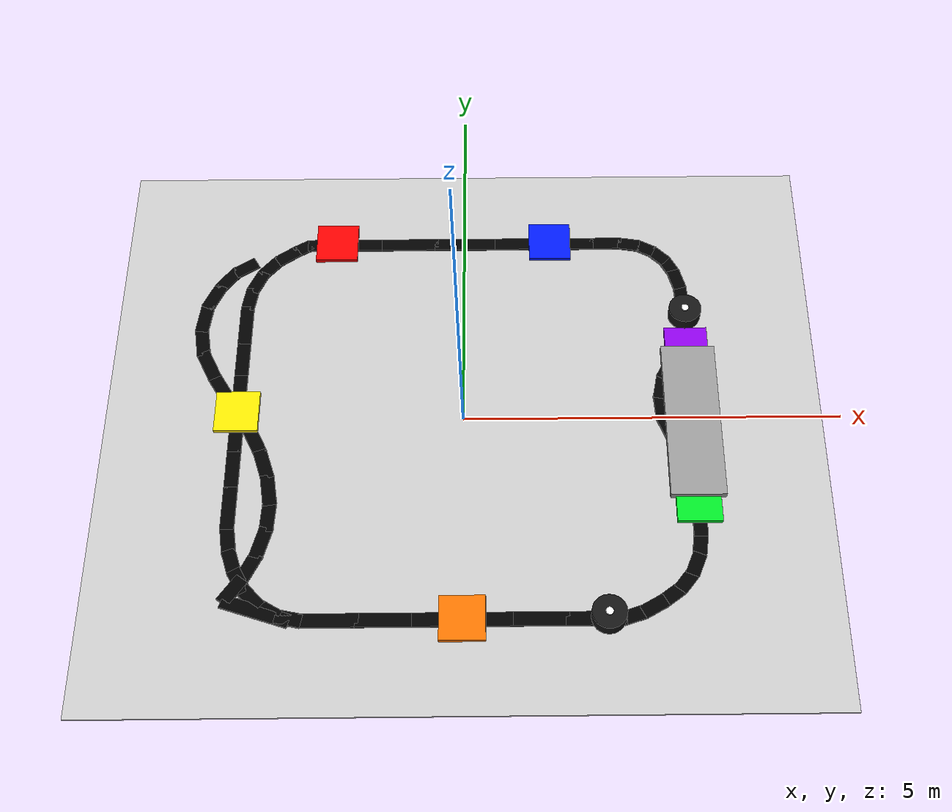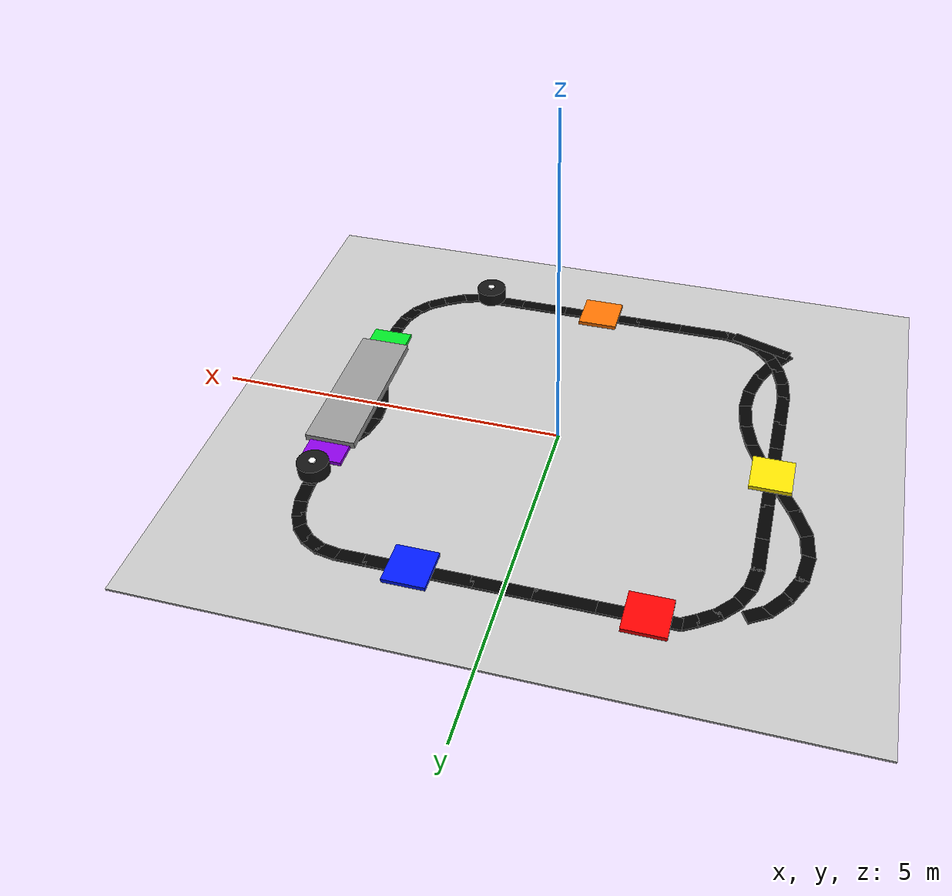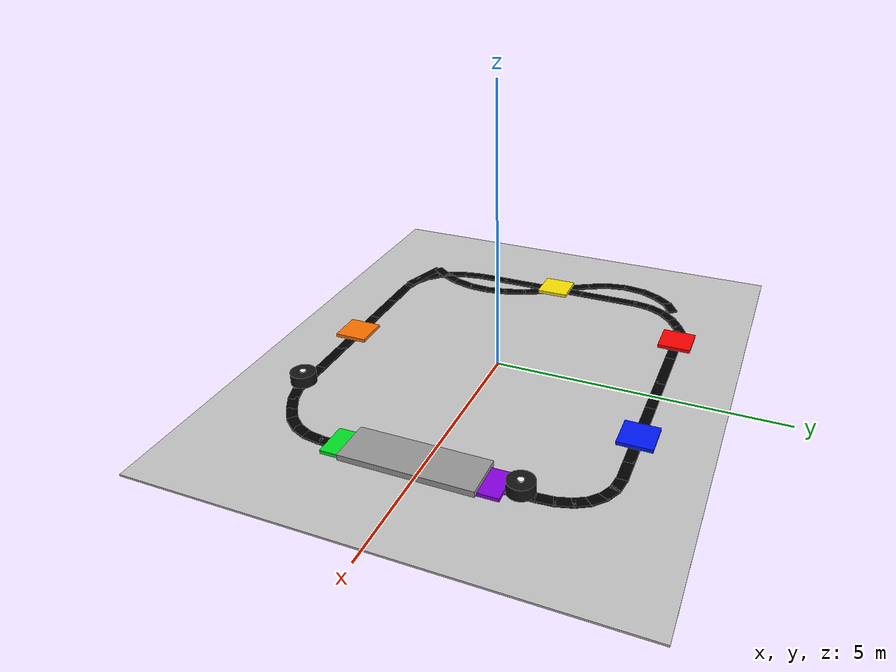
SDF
<?xml version="1.0" ?>
<sdf version="1.6">
  <world name="agv_factory_v5">

    <include>
      <uri>model://sun</uri>
    </include>

    <gui fullscreen="0">
      <camera name="user_camera">
        <pose>0 -0.2 10.5 0 1.5708 1.5708</pose>
        <view_controller>orbit</view_controller>
      </camera>
    </gui>

    <model name="factory_floor">
      <static>true</static>
      <pose>0.0000 0.0000 -0.0150 0 0 0.0000</pose>
      <link name="link">
        <collision name="collision">
          <geometry>
            <box>
              <size>9.5000 8.0000 0.0300</size>
            </box>
          </geometry>
        </collision>
        <visual name="visual">
          <geometry>
            <box>
              <size>9.5000 8.0000 0.0300</size>
            </box>
          </geometry>

          <material>
            <ambient>0.78 0.78 0.78 1.0</ambient>
            <diffuse>0.78 0.78 0.78 1.0</diffuse>
          </material>
        </visual>
      </link>
    </model>

    <model name="top_line_01">
      <static>true</static>
      <pose>-2.0000 2.8000 0.0150 0 0 0.0000</pose>
      <link name="link">
        <collision name="collision">
          <geometry>
            <box>
              <size>0.4500 0.1800 0.0300</size>
            </box>
          </geometry>
        </collision>
        <visual name="visual">
          <geometry>
            <box>
              <size>0.4500 0.1800 0.0300</size>
            </box>
          </geometry>

          <material>
            <ambient>0 0 0 1</ambient>
            <diffuse>0 0 0 1</diffuse>
          </material>
        </visual>
      </link>
    </model>

    <model name="top_line_02">
      <static>true</static>
      <pose>-1.5000 2.8000 0.0150 0 0 0.0000</pose>
      <link name="link">
        <collision name="collision">
          <geometry>
            <box>
              <size>0.6500 0.1800 0.0300</size>
            </box>
          </geometry>
        </collision>
        <visual name="visual">
          <geometry>
            <box>
              <size>0.6500 0.1800 0.0300</size>
            </box>
          </geometry>

          <material>
            <ambient>0 0 0 1</ambient>
            <diffuse>0 0 0 1</diffuse>
          </material>
        </visual>
      </link>
    </model>

    <model name="top_line_03">
      <static>true</static>
      <pose>-0.8000 2.8000 0.0150 0 0 0.0000</pose>
      <link name="link">
        <collision name="collision">
          <geometry>
            <box>
              <size>0.8500 0.1800 0.0300</size>
            </box>
          </geometry>
        </collision>
        <visual name="visual">
          <geometry>
            <box>
              <size>0.8500 0.1800 0.0300</size>
            </box>
          </geometry>

          <material>
            <ambient>0 0 0 1</ambient>
            <diffuse>0 0 0 1</diffuse>
          </material>
        </visual>
      </link>
    </model>

    <model name="top_line_04">
      <static>true</static>
      <pose>0.0000 2.8000 0.0150 0 0 0.0000</pose>
      <link name="link">
        <collision name="collision">
          <geometry>
            <box>
              <size>0.8500 0.1800 0.0300</size>
            </box>
          </geometry>
        </collision>
        <visual name="visual">
          <geometry>
            <box>
              <size>0.8500 0.1800 0.0300</size>
            </box>
          </geometry>

          <material>
            <ambient>0 0 0 1</ambient>
            <diffuse>0 0 0 1</diffuse>
          </material>
        </visual>
      </link>
    </model>

    <model name="top_line_05">
      <static>true</static>
      <pose>0.8000 2.8000 0.0150 0 0 0.0000</pose>
      <link name="link">
        <collision name="collision">
          <geometry>
            <box>
              <size>0.8500 0.1800 0.0300</size>
            </box>
          </geometry>
        </collision>
        <visual name="visual">
          <geometry>
            <box>
              <size>0.8500 0.1800 0.0300</size>
            </box>
          </geometry>

          <material>
            <ambient>0 0 0 1</ambient>
            <diffuse>0 0 0 1</diffuse>
          </material>
        </visual>
      </link>
    </model>

    <model name="top_line_06">
      <static>true</static>
      <pose>1.5000 2.8000 0.0150 0 0 0.0000</pose>
      <link name="link">
        <collision name="collision">
          <geometry>
            <box>
              <size>0.6500 0.1800 0.0300</size>
            </box>
          </geometry>
        </collision>
        <visual name="visual">
          <geometry>
            <box>
              <size>0.6500 0.1800 0.0300</size>
            </box>
          </geometry>

          <material>
            <ambient>0 0 0 1</ambient>
            <diffuse>0 0 0 1</diffuse>
          </material>
        </visual>
      </link>
    </model>

    <model name="top_line_07">
      <static>true</static>
      <pose>2.0000 2.8000 0.0150 0 0 0.0000</pose>
      <link name="link">
        <collision name="collision">
          <geometry>
            <box>
              <size>0.4500 0.1800 0.0300</size>
            </box>
          </geometry>
        </collision>
        <visual name="visual">
          <geometry>
            <box>
              <size>0.4500 0.1800 0.0300</size>
            </box>
          </geometry>

          <material>
            <ambient>0 0 0 1</ambient>
            <diffuse>0 0 0 1</diffuse>
          </material>
        </visual>
      </link>
    </model>

    <model name="top_right_curve_01">
      <static>true</static>
      <pose>2.3250 2.7800 0.0150 0 0 -0.1587</pose>
      <link name="link">
        <collision name="collision">
          <geometry>
            <box>
              <size>0.3032 0.1800 0.0300</size>
            </box>
          </geometry>
        </collision>
        <visual name="visual">
          <geometry>
            <box>
              <size>0.3032 0.1800 0.0300</size>
            </box>
          </geometry>

          <material>
            <ambient>0 0 0 1</ambient>
            <diffuse>0 0 0 1</diffuse>
          </material>
        </visual>
      </link>
    </model>

    <model name="top_right_curve_02">
      <static>true</static>
      <pose>2.5500 2.7100 0.0150 0 0 -0.4636</pose>
      <link name="link">
        <collision name="collision">
          <geometry>
            <box>
              <size>0.2736 0.1800 0.0300</size>
            </box>
          </geometry>
        </collision>
        <visual name="visual">
          <geometry>
            <box>
              <size>0.2736 0.1800 0.0300</size>
            </box>
          </geometry>

          <material>
            <ambient>0 0 0 1</ambient>
            <diffuse>0 0 0 1</diffuse>
          </material>
        </visual>
      </link>
    </model>

    <model name="top_right_curve_03">
      <static>true</static>
      <pose>2.7350 2.5800 0.0150 0 0 -0.7551</pose>
      <link name="link">
        <collision name="collision">
          <geometry>
            <box>
              <size>0.2835 0.1800 0.0300</size>
            </box>
          </geometry>
        </collision>
        <visual name="visual">
          <geometry>
            <box>
              <size>0.2835 0.1800 0.0300</size>
            </box>
          </geometry>

          <material>
            <ambient>0 0 0 1</ambient>
            <diffuse>0 0 0 1</diffuse>
          </material>
        </visual>
      </link>
    </model>

    <model name="top_right_curve_04">
      <static>true</static>
      <pose>2.8750 2.4000 0.0150 0 0 -1.0680</pose>
      <link name="link">
        <collision name="collision">
          <geometry>
            <box>
              <size>0.2783 0.1800 0.0300</size>
            </box>
          </geometry>
        </collision>
        <visual name="visual">
          <geometry>
            <box>
              <size>0.2783 0.1800 0.0300</size>
            </box>
          </geometry>

          <material>
            <ambient>0 0 0 1</ambient>
            <diffuse>0 0 0 1</diffuse>
          </material>
        </visual>
      </link>
    </model>

    <model name="top_right_curve_05">
      <static>true</static>
      <pose>2.9650 2.1750 0.0150 0 0 -1.2978</pose>
      <link name="link">
        <collision name="collision">
          <geometry>
            <box>
              <size>0.3096 0.1800 0.0300</size>
            </box>
          </geometry>
        </collision>
        <visual name="visual">
          <geometry>
            <box>
              <size>0.3096 0.1800 0.0300</size>
            </box>
          </geometry>

          <material>
            <ambient>0 0 0 1</ambient>
            <diffuse>0 0 0 1</diffuse>
          </material>
        </visual>
      </link>
    </model>

    <model name="top_right_curve_06">
      <static>true</static>
      <pose>3.0100 1.9250 0.0150 0 0 -1.4910</pose>
      <link name="link">
        <collision name="collision">
          <geometry>
            <box>
              <size>0.3008 0.1800 0.0300</size>
            </box>
          </geometry>
        </collision>
        <visual name="visual">
          <geometry>
            <box>
              <size>0.3008 0.1800 0.0300</size>
            </box>
          </geometry>

          <material>
            <ambient>0 0 0 1</ambient>
            <diffuse>0 0 0 1</diffuse>
          </material>
        </visual>
      </link>
    </model>

    <model name="right_line_01">
      <static>true</static>
      <pose>3.0200 1.5500 0.0150 0 0 -1.5708</pose>
      <link name="link">
        <collision name="collision">
          <geometry>
            <box>
              <size>0.5500 0.1800 0.0300</size>
            </box>
          </geometry>
        </collision>
        <visual name="visual">
          <geometry>
            <box>
              <size>0.5500 0.1800 0.0300</size>
            </box>
          </geometry>

          <material>
            <ambient>0 0 0 1</ambient>
            <diffuse>0 0 0 1</diffuse>
          </material>
        </visual>
      </link>
    </model>

    <model name="right_line_02">
      <static>true</static>
      <pose>3.0200 1.0500 0.0150 0 0 -1.5708</pose>
      <link name="link">
        <collision name="collision">
          <geometry>
            <box>
              <size>0.5500 0.1800 0.0300</size>
            </box>
          </geometry>
        </collision>
        <visual name="visual">
          <geometry>
            <box>
              <size>0.5500 0.1800 0.0300</size>
            </box>
          </geometry>

          <material>
            <ambient>0 0 0 1</ambient>
            <diffuse>0 0 0 1</diffuse>
          </material>
        </visual>
      </link>
    </model>

    <model name="right_line_03">
      <static>true</static>
      <pose>3.0200 0.5500 0.0150 0 0 -1.5708</pose>
      <link name="link">
        <collision name="collision">
          <geometry>
            <box>
              <size>0.5500 0.1800 0.0300</size>
            </box>
          </geometry>
        </collision>
        <visual name="visual">
          <geometry>
            <box>
              <size>0.5500 0.1800 0.0300</size>
            </box>
          </geometry>

          <material>
            <ambient>0 0 0 1</ambient>
            <diffuse>0 0 0 1</diffuse>
          </material>
        </visual>
      </link>
    </model>

    <model name="right_line_04">
      <static>true</static>
      <pose>3.0200 0.0500 0.0150 0 0 -1.5708</pose>
      <link name="link">
        <collision name="collision">
          <geometry>
            <box>
              <size>0.5500 0.1800 0.0300</size>
            </box>
          </geometry>
        </collision>
        <visual name="visual">
          <geometry>
            <box>
              <size>0.5500 0.1800 0.0300</size>
            </box>
          </geometry>

          <material>
            <ambient>0 0 0 1</ambient>
            <diffuse>0 0 0 1</diffuse>
          </material>
        </visual>
      </link>
    </model>

    <model name="right_line_05">
      <static>true</static>
      <pose>3.0200 -0.4500 0.0150 0 0 -1.5708</pose>
      <link name="link">
        <collision name="collision">
          <geometry>
            <box>
              <size>0.5500 0.1800 0.0300</size>
            </box>
          </geometry>
        </collision>
        <visual name="visual">
          <geometry>
            <box>
              <size>0.5500 0.1800 0.0300</size>
            </box>
          </geometry>

          <material>
            <ambient>0 0 0 1</ambient>
            <diffuse>0 0 0 1</diffuse>
          </material>
        </visual>
      </link>
    </model>

    <model name="right_line_06">
      <static>true</static>
      <pose>3.0200 -0.9500 0.0150 0 0 -1.5708</pose>
      <link name="link">
        <collision name="collision">
          <geometry>
            <box>
              <size>0.5500 0.1800 0.0300</size>
            </box>
          </geometry>
        </collision>
        <visual name="visual">
          <geometry>
            <box>
              <size>0.5500 0.1800 0.0300</size>
            </box>
          </geometry>

          <material>
            <ambient>0 0 0 1</ambient>
            <diffuse>0 0 0 1</diffuse>
          </material>
        </visual>
      </link>
    </model>

    <model name="right_line_07">
      <static>true</static>
      <pose>3.0200 -1.4500 0.0150 0 0 -1.5708</pose>
      <link name="link">
        <collision name="collision">
          <geometry>
            <box>
              <size>0.5500 0.1800 0.0300</size>
            </box>
          </geometry>
        </collision>
        <visual name="visual">
          <geometry>
            <box>
              <size>0.5500 0.1800 0.0300</size>
            </box>
          </geometry>

          <material>
            <ambient>0 0 0 1</ambient>
            <diffuse>0 0 0 1</diffuse>
          </material>
        </visual>
      </link>
    </model>

    <model name="bottom_right_curve_01">
      <static>true</static>
      <pose>3.0000 -1.8400 0.0150 0 0 -1.7127</pose>
      <link name="link">
        <collision name="collision">
          <geometry>
            <box>
              <size>0.3328 0.1800 0.0300</size>
            </box>
          </geometry>
        </collision>
        <visual name="visual">
          <geometry>
            <box>
              <size>0.3328 0.1800 0.0300</size>
            </box>
          </geometry>

          <material>
            <ambient>0 0 0 1</ambient>
            <diffuse>0 0 0 1</diffuse>
          </material>
        </visual>
      </link>
    </model>

    <model name="bottom_right_curve_02">
      <static>true</static>
      <pose>2.9300 -2.1000 0.0150 0 0 -1.9656</pose>
      <link name="link">
        <collision name="collision">
          <geometry>
            <box>
              <size>0.3100 0.1800 0.0300</size>
            </box>
          </geometry>
        </collision>
        <visual name="visual">
          <geometry>
            <box>
              <size>0.3100 0.1800 0.0300</size>
            </box>
          </geometry>

          <material>
            <ambient>0 0 0 1</ambient>
            <diffuse>0 0 0 1</diffuse>
          </material>
        </visual>
      </link>
    </model>

    <model name="bottom_right_curve_03">
      <static>true</static>
      <pose>2.8000 -2.3200 0.0150 0 0 -2.2455</pose>
      <link name="link">
        <collision name="collision">
          <geometry>
            <box>
              <size>0.3061 0.1800 0.0300</size>
            </box>
          </geometry>
        </collision>
        <visual name="visual">
          <geometry>
            <box>
              <size>0.3061 0.1800 0.0300</size>
            </box>
          </geometry>

          <material>
            <ambient>0 0 0 1</ambient>
            <diffuse>0 0 0 1</diffuse>
          </material>
        </visual>
      </link>
    </model>

    <model name="bottom_right_curve_04">
      <static>true</static>
      <pose>2.6100 -2.5000 0.0150 0 0 -2.5128</pose>
      <link name="link">
        <collision name="collision">
          <geometry>
            <box>
              <size>0.3220 0.1800 0.0300</size>
            </box>
          </geometry>
        </collision>
        <visual name="visual">
          <geometry>
            <box>
              <size>0.3220 0.1800 0.0300</size>
            </box>
          </geometry>

          <material>
            <ambient>0 0 0 1</ambient>
            <diffuse>0 0 0 1</diffuse>
          </material>
        </visual>
      </link>
    </model>

    <model name="bottom_right_curve_05">
      <static>true</static>
      <pose>2.3750 -2.6500 0.0150 0 0 -2.6311</pose>
      <link name="link">
        <collision name="collision">
          <geometry>
            <box>
              <size>0.3365 0.1800 0.0300</size>
            </box>
          </geometry>
        </collision>
        <visual name="visual">
          <geometry>
            <box>
              <size>0.3365 0.1800 0.0300</size>
            </box>
          </geometry>

          <material>
            <ambient>0 0 0 1</ambient>
            <diffuse>0 0 0 1</diffuse>
          </material>
        </visual>
      </link>
    </model>

    <model name="bottom_right_curve_06">
      <static>true</static>
      <pose>2.1250 -2.7600 0.0150 0 0 -2.8319</pose>
      <link name="link">
        <collision name="collision">
          <geometry>
            <box>
              <size>0.3125 0.1800 0.0300</size>
            </box>
          </geometry>
        </collision>
        <visual name="visual">
          <geometry>
            <box>
              <size>0.3125 0.1800 0.0300</size>
            </box>
          </geometry>

          <material>
            <ambient>0 0 0 1</ambient>
            <diffuse>0 0 0 1</diffuse>
          </material>
        </visual>
      </link>
    </model>

    <model name="bottom_line_01">
      <static>true</static>
      <pose>1.6500 -2.8000 0.0150 0 0 3.1416</pose>
      <link name="link">
        <collision name="collision">
          <geometry>
            <box>
              <size>0.7500 0.1800 0.0300</size>
            </box>
          </geometry>
        </collision>
        <visual name="visual">
          <geometry>
            <box>
              <size>0.7500 0.1800 0.0300</size>
            </box>
          </geometry>

          <material>
            <ambient>0 0 0 1</ambient>
            <diffuse>0 0 0 1</diffuse>
          </material>
        </visual>
      </link>
    </model>

    <model name="bottom_line_02">
      <static>true</static>
      <pose>0.9500 -2.8000 0.0150 0 0 3.1416</pose>
      <link name="link">
        <collision name="collision">
          <geometry>
            <box>
              <size>0.7500 0.1800 0.0300</size>
            </box>
          </geometry>
        </collision>
        <visual name="visual">
          <geometry>
            <box>
              <size>0.7500 0.1800 0.0300</size>
            </box>
          </geometry>

          <material>
            <ambient>0 0 0 1</ambient>
            <diffuse>0 0 0 1</diffuse>
          </material>
        </visual>
      </link>
    </model>

    <model name="bottom_line_03">
      <static>true</static>
      <pose>0.3000 -2.8000 0.0150 0 0 3.1416</pose>
      <link name="link">
        <collision name="collision">
          <geometry>
            <box>
              <size>0.6500 0.1800 0.0300</size>
            </box>
          </geometry>
        </collision>
        <visual name="visual">
          <geometry>
            <box>
              <size>0.6500 0.1800 0.0300</size>
            </box>
          </geometry>

          <material>
            <ambient>0 0 0 1</ambient>
            <diffuse>0 0 0 1</diffuse>
          </material>
        </visual>
      </link>
    </model>

    <model name="bottom_line_04">
      <static>true</static>
      <pose>-0.3000 -2.8000 0.0150 0 0 3.1416</pose>
      <link name="link">
        <collision name="collision">
          <geometry>
            <box>
              <size>0.6500 0.1800 0.0300</size>
            </box>
          </geometry>
        </collision>
        <visual name="visual">
          <geometry>
            <box>
              <size>0.6500 0.1800 0.0300</size>
            </box>
          </geometry>

          <material>
            <ambient>0 0 0 1</ambient>
            <diffuse>0 0 0 1</diffuse>
          </material>
        </visual>
      </link>
    </model>

    <model name="bottom_line_05">
      <static>true</static>
      <pose>-0.9500 -2.8000 0.0150 0 0 3.1416</pose>
      <link name="link">
        <collision name="collision">
          <geometry>
            <box>
              <size>0.7500 0.1800 0.0300</size>
            </box>
          </geometry>
        </collision>
        <visual name="visual">
          <geometry>
            <box>
              <size>0.7500 0.1800 0.0300</size>
            </box>
          </geometry>

          <material>
            <ambient>0 0 0 1</ambient>
            <diffuse>0 0 0 1</diffuse>
          </material>
        </visual>
      </link>
    </model>

    <model name="bottom_line_06">
      <static>true</static>
      <pose>-1.6500 -2.8000 0.0150 0 0 3.1416</pose>
      <link name="link">
        <collision name="collision">
          <geometry>
            <box>
              <size>0.7500 0.1800 0.0300</size>
            </box>
          </geometry>
        </collision>
        <visual name="visual">
          <geometry>
            <box>
              <size>0.7500 0.1800 0.0300</size>
            </box>
          </geometry>

          <material>
            <ambient>0 0 0 1</ambient>
            <diffuse>0 0 0 1</diffuse>
          </material>
        </visual>
      </link>
    </model>

    <model name="bottom_left_curve_01">
      <static>true</static>
      <pose>-2.1400 -2.7700 0.0150 0 0 2.9305</pose>
      <link name="link">
        <collision name="collision">
          <geometry>
            <box>
              <size>0.3364 0.1800 0.0300</size>
            </box>
          </geometry>
        </collision>
        <visual name="visual">
          <geometry>
            <box>
              <size>0.3364 0.1800 0.0300</size>
            </box>
          </geometry>

          <material>
            <ambient>0 0 0 1</ambient>
            <diffuse>0 0 0 1</diffuse>
          </material>
        </visual>
      </link>
    </model>

    <model name="bottom_left_curve_02">
      <static>true</static>
      <pose>-2.4000 -2.6700 0.0150 0 0 2.6135</pose>
      <link name="link">
        <collision name="collision">
          <geometry>
            <box>
              <size>0.3278 0.1800 0.0300</size>
            </box>
          </geometry>
        </collision>
        <visual name="visual">
          <geometry>
            <box>
              <size>0.3278 0.1800 0.0300</size>
            </box>
          </geometry>

          <material>
            <ambient>0 0 0 1</ambient>
            <diffuse>0 0 0 1</diffuse>
          </material>
        </visual>
      </link>
    </model>

    <model name="bottom_left_curve_03">
      <static>true</static>
      <pose>-2.6200 -2.5000 0.0150 0 0 2.3562</pose>
      <link name="link">
        <collision name="collision">
          <geometry>
            <box>
              <size>0.3328 0.1800 0.0300</size>
            </box>
          </geometry>
        </collision>
        <visual name="visual">
          <geometry>
            <box>
              <size>0.3328 0.1800 0.0300</size>
            </box>
          </geometry>

          <material>
            <ambient>0 0 0 1</ambient>
            <diffuse>0 0 0 1</diffuse>
          </material>
        </visual>
      </link>
    </model>

    <model name="bottom_left_curve_04">
      <static>true</static>
      <pose>-2.7900 -2.2750 0.0150 0 0 2.0813</pose>
      <link name="link">
        <collision name="collision">
          <geometry>
            <box>
              <size>0.3365 0.1800 0.0300</size>
            </box>
          </geometry>
        </collision>
        <visual name="visual">
          <geometry>
            <box>
              <size>0.3365 0.1800 0.0300</size>
            </box>
          </geometry>

          <material>
            <ambient>0 0 0 1</ambient>
            <diffuse>0 0 0 1</diffuse>
          </material>
        </visual>
      </link>
    </model>

    <model name="bottom_left_curve_05">
      <static>true</static>
      <pose>-2.9050 -2.0150 0.0150 0 0 1.8925</pose>
      <link name="link">
        <collision name="collision">
          <geometry>
            <box>
              <size>0.3346 0.1800 0.0300</size>
            </box>
          </geometry>
        </collision>
        <visual name="visual">
          <geometry>
            <box>
              <size>0.3346 0.1800 0.0300</size>
            </box>
          </geometry>

          <material>
            <ambient>0 0 0 1</ambient>
            <diffuse>0 0 0 1</diffuse>
          </material>
        </visual>
      </link>
    </model>

    <model name="bottom_left_curve_06">
      <static>true</static>
      <pose>-2.9750 -1.7150 0.0150 0 0 1.7212</pose>
      <link name="link">
        <collision name="collision">
          <geometry>
            <box>
              <size>0.3838 0.1800 0.0300</size>
            </box>
          </geometry>
        </collision>
        <visual name="visual">
          <geometry>
            <box>
              <size>0.3838 0.1800 0.0300</size>
            </box>
          </geometry>

          <material>
            <ambient>0 0 0 1</ambient>
            <diffuse>0 0 0 1</diffuse>
          </material>
        </visual>
      </link>
    </model>

    <model name="left_main_vertical_01">
      <static>true</static>
      <pose>-3.0000 -1.2750 0.0150 0 0 1.5708</pose>
      <link name="link">
        <collision name="collision">
          <geometry>
            <box>
              <size>0.6000 0.1800 0.0300</size>
            </box>
          </geometry>
        </collision>
        <visual name="visual">
          <geometry>
            <box>
              <size>0.6000 0.1800 0.0300</size>
            </box>
          </geometry>

          <material>
            <ambient>0 0 0 1</ambient>
            <diffuse>0 0 0 1</diffuse>
          </material>
        </visual>
      </link>
    </model>

    <model name="left_main_vertical_02">
      <static>true</static>
      <pose>-3.0000 -0.7250 0.0150 0 0 1.5708</pose>
      <link name="link">
        <collision name="collision">
          <geometry>
            <box>
              <size>0.6000 0.1800 0.0300</size>
            </box>
          </geometry>
        </collision>
        <visual name="visual">
          <geometry>
            <box>
              <size>0.6000 0.1800 0.0300</size>
            </box>
          </geometry>

          <material>
            <ambient>0 0 0 1</ambient>
            <diffuse>0 0 0 1</diffuse>
          </material>
        </visual>
      </link>
    </model>

    <model name="left_main_vertical_03">
      <static>true</static>
      <pose>-3.0000 -0.1750 0.0150 0 0 1.5708</pose>
      <link name="link">
        <collision name="collision">
          <geometry>
            <box>
              <size>0.6000 0.1800 0.0300</size>
            </box>
          </geometry>
        </collision>
        <visual name="visual">
          <geometry>
            <box>
              <size>0.6000 0.1800 0.0300</size>
            </box>
          </geometry>

          <material>
            <ambient>0 0 0 1</ambient>
            <diffuse>0 0 0 1</diffuse>
          </material>
        </visual>
      </link>
    </model>

    <model name="left_main_vertical_04">
      <static>true</static>
      <pose>-3.0000 0.3750 0.0150 0 0 1.5708</pose>
      <link name="link">
        <collision name="collision">
          <geometry>
            <box>
              <size>0.6000 0.1800 0.0300</size>
            </box>
          </geometry>
        </collision>
        <visual name="visual">
          <geometry>
            <box>
              <size>0.6000 0.1800 0.0300</size>
            </box>
          </geometry>

          <material>
            <ambient>0 0 0 1</ambient>
            <diffuse>0 0 0 1</diffuse>
          </material>
        </visual>
      </link>
    </model>

    <model name="left_main_vertical_05">
      <static>true</static>
      <pose>-3.0000 0.9250 0.0150 0 0 1.5708</pose>
      <link name="link">
        <collision name="collision">
          <geometry>
            <box>
              <size>0.6000 0.1800 0.0300</size>
            </box>
          </geometry>
        </collision>
        <visual name="visual">
          <geometry>
            <box>
              <size>0.6000 0.1800 0.0300</size>
            </box>
          </geometry>

          <material>
            <ambient>0 0 0 1</ambient>
            <diffuse>0 0 0 1</diffuse>
          </material>
        </visual>
      </link>
    </model>

    <model name="left_main_vertical_06">
      <static>true</static>
      <pose>-3.0000 1.4750 0.0150 0 0 1.5708</pose>
      <link name="link">
        <collision name="collision">
          <geometry>
            <box>
              <size>0.6000 0.1800 0.0300</size>
            </box>
          </geometry>
        </collision>
        <visual name="visual">
          <geometry>
            <box>
              <size>0.6000 0.1800 0.0300</size>
            </box>
          </geometry>

          <material>
            <ambient>0 0 0 1</ambient>
            <diffuse>0 0 0 1</diffuse>
          </material>
        </visual>
      </link>
    </model>

    <model name="top_left_curve_01">
      <static>true</static>
      <pose>-2.9750 1.9000 0.0150 0 0 1.4056</pose>
      <link name="link">
        <collision name="collision">
          <geometry>
            <box>
              <size>0.3541 0.1800 0.0300</size>
            </box>
          </geometry>
        </collision>
        <visual name="visual">
          <geometry>
            <box>
              <size>0.3541 0.1800 0.0300</size>
            </box>
          </geometry>

          <material>
            <ambient>0 0 0 1</ambient>
            <diffuse>0 0 0 1</diffuse>
          </material>
        </visual>
      </link>
    </model>

    <model name="top_left_curve_02">
      <static>true</static>
      <pose>-2.8850 2.1850 0.0150 0 0 1.1221</pose>
      <link name="link">
        <collision name="collision">
          <geometry>
            <box>
              <size>0.3497 0.1800 0.0300</size>
            </box>
          </geometry>
        </collision>
        <visual name="visual">
          <geometry>
            <box>
              <size>0.3497 0.1800 0.0300</size>
            </box>
          </geometry>

          <material>
            <ambient>0 0 0 1</ambient>
            <diffuse>0 0 0 1</diffuse>
          </material>
        </visual>
      </link>
    </model>

    <model name="top_left_curve_03">
      <static>true</static>
      <pose>-2.7200 2.4300 0.0150 0 0 0.8330</pose>
      <link name="link">
        <collision name="collision">
          <geometry>
            <box>
              <size>0.3473 0.1800 0.0300</size>
            </box>
          </geometry>
        </collision>
        <visual name="visual">
          <geometry>
            <box>
              <size>0.3473 0.1800 0.0300</size>
            </box>
          </geometry>

          <material>
            <ambient>0 0 0 1</ambient>
            <diffuse>0 0 0 1</diffuse>
          </material>
        </visual>
      </link>
    </model>

    <model name="top_left_curve_04">
      <static>true</static>
      <pose>-2.5000 2.6200 0.0150 0 0 0.5880</pose>
      <link name="link">
        <collision name="collision">
          <geometry>
            <box>
              <size>0.3384 0.1800 0.0300</size>
            </box>
          </geometry>
        </collision>
        <visual name="visual">
          <geometry>
            <box>
              <size>0.3384 0.1800 0.0300</size>
            </box>
          </geometry>

          <material>
            <ambient>0 0 0 1</ambient>
            <diffuse>0 0 0 1</diffuse>
          </material>
        </visual>
      </link>
    </model>

    <model name="top_left_curve_05">
      <static>true</static>
      <pose>-2.2900 2.7500 0.0150 0 0 0.5071</pose>
      <link name="link">
        <collision name="collision">
          <geometry>
            <box>
              <size>0.2559 0.1800 0.0300</size>
            </box>
          </geometry>
        </collision>
        <visual name="visual">
          <geometry>
            <box>
              <size>0.2559 0.1800 0.0300</size>
            </box>
          </geometry>

          <material>
            <ambient>0 0 0 1</ambient>
            <diffuse>0 0 0 1</diffuse>
          </material>
        </visual>
      </link>
    </model>

    <model name="left_upper_cross_01">
      <static>true</static>
      <pose>-3.0750 2.4250 0.0150 0 0 -2.6012</pose>
      <link name="link">
        <collision name="collision">
          <geometry>
            <box>
              <size>0.3415 0.1800 0.0300</size>
            </box>
          </geometry>
        </collision>
        <visual name="visual">
          <geometry>
            <box>
              <size>0.3415 0.1800 0.0300</size>
            </box>
          </geometry>

          <material>
            <ambient>0 0 0 1</ambient>
            <diffuse>0 0 0 1</diffuse>
          </material>
        </visual>
      </link>
    </model>

    <model name="left_upper_cross_02">
      <static>true</static>
      <pose>-3.3000 2.2250 0.0150 0 0 -2.2455</pose>
      <link name="link">
        <collision name="collision">
          <geometry>
            <box>
              <size>0.3702 0.1800 0.0300</size>
            </box>
          </geometry>
        </collision>
        <visual name="visual">
          <geometry>
            <box>
              <size>0.3702 0.1800 0.0300</size>
            </box>
          </geometry>

          <material>
            <ambient>0 0 0 1</ambient>
            <diffuse>0 0 0 1</diffuse>
          </material>
        </visual>
      </link>
    </model>

    <model name="left_upper_cross_03">
      <static>true</static>
      <pose>-3.4750 1.9400 0.0150 0 0 -2.0091</pose>
      <link name="link">
        <collision name="collision">
          <geometry>
            <box>
              <size>0.4034 0.1800 0.0300</size>
            </box>
          </geometry>
        </collision>
        <visual name="visual">
          <geometry>
            <box>
              <size>0.4034 0.1800 0.0300</size>
            </box>
          </geometry>

          <material>
            <ambient>0 0 0 1</ambient>
            <diffuse>0 0 0 1</diffuse>
          </material>
        </visual>
      </link>
    </model>

    <model name="left_upper_cross_04">
      <static>true</static>
      <pose>-3.5750 1.5900 0.0150 0 0 -1.7016</pose>
      <link name="link">
        <collision name="collision">
          <geometry>
            <box>
              <size>0.4333 0.1800 0.0300</size>
            </box>
          </geometry>
        </collision>
        <visual name="visual">
          <geometry>
            <box>
              <size>0.4333 0.1800 0.0300</size>
            </box>
          </geometry>

          <material>
            <ambient>0 0 0 1</ambient>
            <diffuse>0 0 0 1</diffuse>
          </material>
        </visual>
      </link>
    </model>

    <model name="left_upper_cross_05">
      <static>true</static>
      <pose>-3.5700 1.2100 0.0150 0 0 -1.4142</pose>
      <link name="link">
        <collision name="collision">
          <geometry>
            <box>
              <size>0.4347 0.1800 0.0300</size>
            </box>
          </geometry>
        </collision>
        <visual name="visual">
          <geometry>
            <box>
              <size>0.4347 0.1800 0.0300</size>
            </box>
          </geometry>

          <material>
            <ambient>0 0 0 1</ambient>
            <diffuse>0 0 0 1</diffuse>
          </material>
        </visual>
      </link>
    </model>

    <model name="left_upper_cross_06">
      <static>true</static>
      <pose>-3.4500 0.8400 0.0150 0 0 -1.1071</pose>
      <link name="link">
        <collision name="collision">
          <geometry>
            <box>
              <size>0.4525 0.1800 0.0300</size>
            </box>
          </geometry>
        </collision>
        <visual name="visual">
          <geometry>
            <box>
              <size>0.4525 0.1800 0.0300</size>
            </box>
          </geometry>

          <material>
            <ambient>0 0 0 1</ambient>
            <diffuse>0 0 0 1</diffuse>
          </material>
        </visual>
      </link>
    </model>

    <model name="left_upper_cross_07">
      <static>true</static>
      <pose>-3.2600 0.5000 0.0150 0 0 -1.0122</pose>
      <link name="link">
        <collision name="collision">
          <geometry>
            <box>
              <size>0.4274 0.1800 0.0300</size>
            </box>
          </geometry>
        </collision>
        <visual name="visual">
          <geometry>
            <box>
              <size>0.4274 0.1800 0.0300</size>
            </box>
          </geometry>

          <material>
            <ambient>0 0 0 1</ambient>
            <diffuse>0 0 0 1</diffuse>
          </material>
        </visual>
      </link>
    </model>

    <model name="left_upper_cross_08">
      <static>true</static>
      <pose>-3.0800 0.2200 0.0150 0 0 -0.9828</pose>
      <link name="link">
        <collision name="collision">
          <geometry>
            <box>
              <size>0.3384 0.1800 0.0300</size>
            </box>
          </geometry>
        </collision>
        <visual name="visual">
          <geometry>
            <box>
              <size>0.3384 0.1800 0.0300</size>
            </box>
          </geometry>

          <material>
            <ambient>0 0 0 1</ambient>
            <diffuse>0 0 0 1</diffuse>
          </material>
        </visual>
      </link>
    </model>

    <model name="left_lower_cross_01">
      <static>true</static>
      <pose>-2.9100 -0.0300 0.0150 0 0 -0.9653</pose>
      <link name="link">
        <collision name="collision">
          <geometry>
            <box>
              <size>0.3662 0.1800 0.0300</size>
            </box>
          </geometry>
        </collision>
        <visual name="visual">
          <geometry>
            <box>
              <size>0.3662 0.1800 0.0300</size>
            </box>
          </geometry>

          <material>
            <ambient>0 0 0 1</ambient>
            <diffuse>0 0 0 1</diffuse>
          </material>
        </visual>
      </link>
    </model>

    <model name="left_lower_cross_02">
      <static>true</static>
      <pose>-2.7400 -0.3200 0.0150 0 0 -1.1071</pose>
      <link name="link">
        <collision name="collision">
          <geometry>
            <box>
              <size>0.4078 0.1800 0.0300</size>
            </box>
          </geometry>
        </collision>
        <visual name="visual">
          <geometry>
            <box>
              <size>0.4078 0.1800 0.0300</size>
            </box>
          </geometry>

          <material>
            <ambient>0 0 0 1</ambient>
            <diffuse>0 0 0 1</diffuse>
          </material>
        </visual>
      </link>
    </model>

    <model name="left_lower_cross_03">
      <static>true</static>
      <pose>-2.6000 -0.6600 0.0150 0 0 -1.2490</pose>
      <link name="link">
        <collision name="collision">
          <geometry>
            <box>
              <size>0.4295 0.1800 0.0300</size>
            </box>
          </geometry>
        </collision>
        <visual name="visual">
          <geometry>
            <box>
              <size>0.4295 0.1800 0.0300</size>
            </box>
          </geometry>

          <material>
            <ambient>0 0 0 1</ambient>
            <diffuse>0 0 0 1</diffuse>
          </material>
        </visual>
      </link>
    </model>

    <model name="left_lower_cross_04">
      <static>true</static>
      <pose>-2.5100 -1.0300 0.0150 0 0 -1.4142</pose>
      <link name="link">
        <collision name="collision">
          <geometry>
            <box>
              <size>0.4347 0.1800 0.0300</size>
            </box>
          </geometry>
        </collision>
        <visual name="visual">
          <geometry>
            <box>
              <size>0.4347 0.1800 0.0300</size>
            </box>
          </geometry>

          <material>
            <ambient>0 0 0 1</ambient>
            <diffuse>0 0 0 1</diffuse>
          </material>
        </visual>
      </link>
    </model>

    <model name="left_lower_cross_05">
      <static>true</static>
      <pose>-2.4900 -1.4000 0.0150 0 0 -1.6263</pose>
      <link name="link">
        <collision name="collision">
          <geometry>
            <box>
              <size>0.4106 0.1800 0.0300</size>
            </box>
          </geometry>
        </collision>
        <visual name="visual">
          <geometry>
            <box>
              <size>0.4106 0.1800 0.0300</size>
            </box>
          </geometry>

          <material>
            <ambient>0 0 0 1</ambient>
            <diffuse>0 0 0 1</diffuse>
          </material>
        </visual>
      </link>
    </model>

    <model name="left_lower_cross_06">
      <static>true</static>
      <pose>-2.5500 -1.7600 0.0150 0 0 -1.8417</pose>
      <link name="link">
        <collision name="collision">
          <geometry>
            <box>
              <size>0.4236 0.1800 0.0300</size>
            </box>
          </geometry>
        </collision>
        <visual name="visual">
          <geometry>
            <box>
              <size>0.4236 0.1800 0.0300</size>
            </box>
          </geometry>

          <material>
            <ambient>0 0 0 1</ambient>
            <diffuse>0 0 0 1</diffuse>
          </material>
        </visual>
      </link>
    </model>

    <model name="left_lower_cross_07">
      <static>true</static>
      <pose>-2.6800 -2.1000 0.0150 0 0 -2.0344</pose>
      <link name="link">
        <collision name="collision">
          <geometry>
            <box>
              <size>0.4078 0.1800 0.0300</size>
            </box>
          </geometry>
        </collision>
        <visual name="visual">
          <geometry>
            <box>
              <size>0.4078 0.1800 0.0300</size>
            </box>
          </geometry>

          <material>
            <ambient>0 0 0 1</ambient>
            <diffuse>0 0 0 1</diffuse>
          </material>
        </visual>
      </link>
    </model>

    <model name="left_lower_cross_08">
      <static>true</static>
      <pose>-2.8600 -2.4000 0.0150 0 0 -2.1910</pose>
      <link name="link">
        <collision name="collision">
          <geometry>
            <box>
              <size>0.3941 0.1800 0.0300</size>
            </box>
          </geometry>
        </collision>
        <visual name="visual">
          <geometry>
            <box>
              <size>0.3941 0.1800 0.0300</size>
            </box>
          </geometry>

          <material>
            <ambient>0 0 0 1</ambient>
            <diffuse>0 0 0 1</diffuse>
          </material>
        </visual>
      </link>
    </model>

    <model name="left_lower_cross_09">
      <static>true</static>
      <pose>-2.5550 -2.6700 0.0150 0 0 -0.3106</pose>
      <link name="link">
        <collision name="collision">
          <geometry>
            <box>
              <size>0.9007 0.1800 0.0300</size>
            </box>
          </geometry>
        </collision>
        <visual name="visual">
          <geometry>
            <box>
              <size>0.9007 0.1800 0.0300</size>
            </box>
          </geometry>

          <material>
            <ambient>0 0 0 1</ambient>
            <diffuse>0 0 0 1</diffuse>
          </material>
        </visual>
      </link>
    </model>

    <model name="right_inner_curve_01">
      <static>true</static>
      <pose>2.9200 0.9550 0.0150 0 0 -2.3818</pose>
      <link name="link">
        <collision name="collision">
          <geometry>
            <box>
              <size>0.3259 0.1800 0.0300</size>
            </box>
          </geometry>
        </collision>
        <visual name="visual">
          <geometry>
            <box>
              <size>0.3259 0.1800 0.0300</size>
            </box>
          </geometry>

          <material>
            <ambient>0 0 0 1</ambient>
            <diffuse>0 0 0 1</diffuse>
          </material>
        </visual>
      </link>
    </model>

    <model name="right_inner_curve_02">
      <static>true</static>
      <pose>2.7500 0.7300 0.0150 0 0 -2.0647</pose>
      <link name="link">
        <collision name="collision">
          <geometry>
            <box>
              <size>0.3453 0.1800 0.0300</size>
            </box>
          </geometry>
        </collision>
        <visual name="visual">
          <geometry>
            <box>
              <size>0.3453 0.1800 0.0300</size>
            </box>
          </geometry>

          <material>
            <ambient>0 0 0 1</ambient>
            <diffuse>0 0 0 1</diffuse>
          </material>
        </visual>
      </link>
    </model>

    <model name="right_inner_curve_03">
      <static>true</static>
      <pose>2.6500 0.4500 0.0150 0 0 -1.7682</pose>
      <link name="link">
        <collision name="collision">
          <geometry>
            <box>
              <size>0.3559 0.1800 0.0300</size>
            </box>
          </geometry>
        </collision>
        <visual name="visual">
          <geometry>
            <box>
              <size>0.3559 0.1800 0.0300</size>
            </box>
          </geometry>

          <material>
            <ambient>0 0 0 1</ambient>
            <diffuse>0 0 0 1</diffuse>
          </material>
        </visual>
      </link>
    </model>

    <model name="right_inner_curve_04">
      <static>true</static>
      <pose>2.6300 0.1400 0.0150 0 0 -1.5084</pose>
      <link name="link">
        <collision name="collision">
          <geometry>
            <box>
              <size>0.3706 0.1800 0.0300</size>
            </box>
          </geometry>
        </collision>
        <visual name="visual">
          <geometry>
            <box>
              <size>0.3706 0.1800 0.0300</size>
            </box>
          </geometry>

          <material>
            <ambient>0 0 0 1</ambient>
            <diffuse>0 0 0 1</diffuse>
          </material>
        </visual>
      </link>
    </model>

    <model name="right_inner_curve_05">
      <static>true</static>
      <pose>2.7000 -0.1700 0.0150 0 0 -1.1903</pose>
      <link name="link">
        <collision name="collision">
          <geometry>
            <box>
              <size>0.3731 0.1800 0.0300</size>
            </box>
          </geometry>
        </collision>
        <visual name="visual">
          <geometry>
            <box>
              <size>0.3731 0.1800 0.0300</size>
            </box>
          </geometry>

          <material>
            <ambient>0 0 0 1</ambient>
            <diffuse>0 0 0 1</diffuse>
          </material>
        </visual>
      </link>
    </model>

    <model name="right_inner_curve_06">
      <static>true</static>
      <pose>2.8500 -0.4500 0.0150 0 0 -0.9653</pose>
      <link name="link">
        <collision name="collision">
          <geometry>
            <box>
              <size>0.3662 0.1800 0.0300</size>
            </box>
          </geometry>
        </collision>
        <visual name="visual">
          <geometry>
            <box>
              <size>0.3662 0.1800 0.0300</size>
            </box>
          </geometry>

          <material>
            <ambient>0 0 0 1</ambient>
            <diffuse>0 0 0 1</diffuse>
          </material>
        </visual>
      </link>
    </model>

    <model name="right_inner_curve_07">
      <static>true</static>
      <pose>2.9800 -0.6800 0.0150 0 0 -1.1903</pose>
      <link name="link">
        <collision name="collision">
          <geometry>
            <box>
              <size>0.2654 0.1800 0.0300</size>
            </box>
          </geometry>
        </collision>
        <visual name="visual">
          <geometry>
            <box>
              <size>0.2654 0.1800 0.0300</size>
            </box>
          </geometry>

          <material>
            <ambient>0 0 0 1</ambient>
            <diffuse>0 0 0 1</diffuse>
          </material>
        </visual>
      </link>
    </model>

    <model name="red_square">
      <static>true</static>
      <pose>-1.8000 2.8000 0.0600 0 0 0.0000</pose>
      <link name="link">
        <collision name="collision">
          <geometry>
            <box>
              <size>0.5800 0.5800 0.0600</size>
            </box>
          </geometry>
        </collision>
        <visual name="visual">
          <geometry>
            <box>
              <size>0.5800 0.5800 0.0600</size>
            </box>
          </geometry>

          <material>
            <ambient>1.0 0.0 0.0 1.0</ambient>
            <diffuse>1.0 0.0 0.0 1.0</diffuse>
          </material>
        </visual>
      </link>
    </model>

    <model name="blue_square">
      <static>true</static>
      <pose>1.2000 2.8000 0.0600 0 0 0.0000</pose>
      <link name="link">
        <collision name="collision">
          <geometry>
            <box>
              <size>0.5800 0.5800 0.0600</size>
            </box>
          </geometry>
        </collision>
        <visual name="visual">
          <geometry>
            <box>
              <size>0.5800 0.5800 0.0600</size>
            </box>
          </geometry>

          <material>
            <ambient>0.0 0.1 1.0 1.0</ambient>
            <diffuse>0.0 0.1 1.0 1.0</diffuse>
          </material>
        </visual>
      </link>
    </model>

    <model name="yellow_square">
      <static>true</static>
      <pose>-3.0000 0.1000 0.0600 0 0 0.0000</pose>
      <link name="link">
        <collision name="collision">
          <geometry>
            <box>
              <size>0.5800 0.5800 0.0600</size>
            </box>
          </geometry>
        </collision>
        <visual name="visual">
          <geometry>
            <box>
              <size>0.5800 0.5800 0.0600</size>
            </box>
          </geometry>

          <material>
            <ambient>1.0 0.9 0.0 1.0</ambient>
            <diffuse>1.0 0.9 0.0 1.0</diffuse>
          </material>
        </visual>
      </link>
    </model>

    <model name="orange_square">
      <static>true</static>
      <pose>0.0000 -2.8000 0.0600 0 0 0.0000</pose>
      <link name="link">
        <collision name="collision">
          <geometry>
            <box>
              <size>0.5800 0.5800 0.0600</size>
            </box>
          </geometry>
        </collision>
        <visual name="visual">
          <geometry>
            <box>
              <size>0.5800 0.5800 0.0600</size>
            </box>
          </geometry>

          <material>
            <ambient>1.0 0.45 0.0 1.0</ambient>
            <diffuse>1.0 0.45 0.0 1.0</diffuse>
          </material>
        </visual>
      </link>
    </model>

    <model name="purple_square">
      <static>true</static>
      <pose>3.0200 1.0500 0.0600 0 0 0.0000</pose>
      <link name="link">
        <collision name="collision">
          <geometry>
            <box>
              <size>0.5800 0.5800 0.0600</size>
            </box>
          </geometry>
        </collision>
        <visual name="visual">
          <geometry>
            <box>
              <size>0.5800 0.5800 0.0600</size>
            </box>
          </geometry>

          <material>
            <ambient>0.55 0.0 0.9 1.0</ambient>
            <diffuse>0.55 0.0 0.9 1.0</diffuse>
          </material>
        </visual>
      </link>
    </model>

    <model name="green_square">
      <static>true</static>
      <pose>3.0200 -1.2500 0.0600 0 0 0.0000</pose>
      <link name="link">
        <collision name="collision">
          <geometry>
            <box>
              <size>0.5800 0.5800 0.0600</size>
            </box>
          </geometry>
        </collision>
        <visual name="visual">
          <geometry>
            <box>
              <size>0.5800 0.5800 0.0600</size>
            </box>
          </geometry>

          <material>
            <ambient>0.0 0.9 0.15 1.0</ambient>
            <diffuse>0.0 0.9 0.15 1.0</diffuse>
          </material>
        </visual>
      </link>
    </model>

    <model name="container_area">
      <static>true</static>
      <pose>3.0200 -0.1000 0.1100 0 0 0.0000</pose>
      <link name="link">
        <collision name="collision">
          <geometry>
            <box>
              <size>0.7200 2.2000 0.1000</size>
            </box>
          </geometry>
        </collision>
        <visual name="visual">
          <geometry>
            <box>
              <size>0.7200 2.2000 0.1000</size>
            </box>
          </geometry>

          <material>
            <ambient>0.6 0.6 0.6 1.0</ambient>
            <diffuse>0.6 0.6 0.6 1.0</diffuse>
          </material>
        </visual>
      </link>
    </model>

    <model name="AGV01">
      <static>false</static>
      <pose>1.8000 -2.8000 0.1600 0 0 0</pose>
      <link name="link">
        <collision name="collision">
          <geometry>
            <cylinder>
              <radius>0.2200</radius>
              <length>0.2000</length>
            </cylinder>
          </geometry>
        </collision>
        <visual name="visual">
          <geometry>
            <cylinder>
              <radius>0.2200</radius>
              <length>0.2000</length>
            </cylinder>
          </geometry>

          <material>
            <ambient>0.08 0.08 0.08 1.0</ambient>
            <diffuse>0.08 0.08 0.08 1.0</diffuse>
          </material>
        </visual>
      </link>
    </model>

    <model name="AGV02">
      <static>false</static>
      <pose>3.0200 1.5500 0.1600 0 0 0</pose>
      <link name="link">
        <collision name="collision">
          <geometry>
            <cylinder>
              <radius>0.2200</radius>
              <length>0.2000</length>
            </cylinder>
          </geometry>
        </collision>
        <visual name="visual">
          <geometry>
            <cylinder>
              <radius>0.2200</radius>
              <length>0.2000</length>
            </cylinder>
          </geometry>

          <material>
            <ambient>0.08 0.08 0.08 1.0</ambient>
            <diffuse>0.08 0.08 0.08 1.0</diffuse>
          </material>
        </visual>
      </link>
    </model>

    <model name="AGV01_dot">
      <static>false</static>
      <pose>1.8000 -2.8000 0.2650 0 0 0</pose>
      <link name="link">
        <collision name="collision">
          <geometry>
            <cylinder>
              <radius>0.0500</radius>
              <length>0.0300</length>
            </cylinder>
          </geometry>
        </collision>
        <visual name="visual">
          <geometry>
            <cylinder>
              <radius>0.0500</radius>
              <length>0.0300</length>
            </cylinder>
          </geometry>

          <material>
            <ambient>1.0 1.0 1.0 1.0</ambient>
            <diffuse>1.0 1.0 1.0 1.0</diffuse>
          </material>
        </visual>
      </link>
    </model>

    <model name="AGV02_dot">
      <static>false</static>
      <pose>3.0200 1.5500 0.2650 0 0 0</pose>
      <link name="link">
        <collision name="collision">
          <geometry>
            <cylinder>
              <radius>0.0500</radius>
              <length>0.0300</length>
            </cylinder>
          </geometry>
        </collision>
        <visual name="visual">
          <geometry>
            <cylinder>
              <radius>0.0500</radius>
              <length>0.0300</length>
            </cylinder>
          </geometry>

          <material>
            <ambient>1.0 1.0 1.0 1.0</ambient>
            <diffuse>1.0 1.0 1.0 1.0</diffuse>
          </material>
        </visual>
      </link>
    </model>

  </world>
</sdf>
